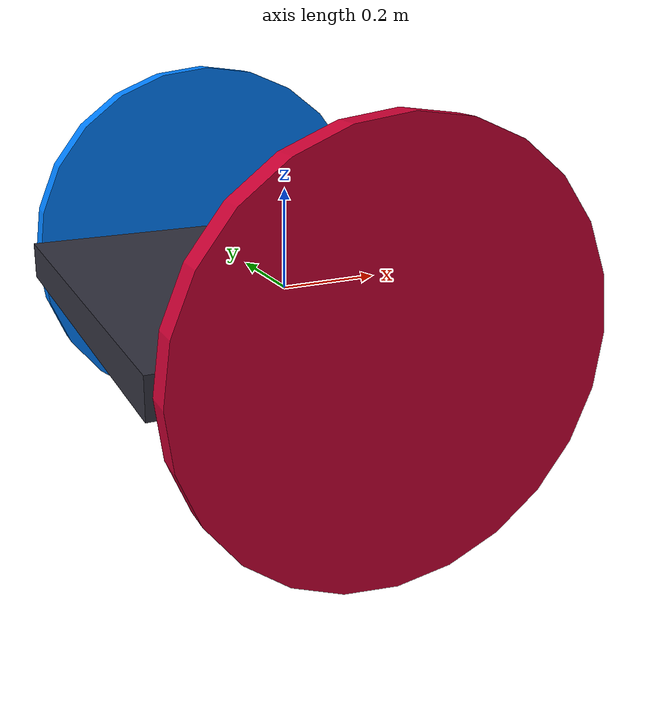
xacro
<?xml version="1.0" ?>

<robot name="basic_robot"  xmlns:xacro="http://www.ros.org/wiki/xacro">
    <!-- Import diff macro -->
    <xacro:include filename="$(find en613_description)/urdf/basic_robot_macro.urdf.xacro"/>

    <xacro:arg name="use_gazebo" default="true"/>

    <xacro:if value="$(arg use_gazebo)">
        <xacro:include filename="$(find en613_description)/urdf/basic_robot.gazebo.xacro"/>
        <xacro:basic_robot_gazebo />
    </xacro:if>

    <xacro:unless value="$(arg use_gazebo)">
        <link name="odom" />

        <joint name="odom_to_chassis" type="fixed">
            <origin xyz="0 0 0.4" rpy="0 0 0"/>
            <parent link="odom"/>
            <child link="chassis"/>
        </joint>
    </xacro:unless>

    <xacro:basic_robot />

</robot>

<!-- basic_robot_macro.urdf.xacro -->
<robot xmlns:xacro="http://wiki.ros.org/xacro">
    <xacro:macro name="basic_robot" params="">
        <material name="electric-blue">
            <color rgba="0.0 0.5 1.0 1.0"/>
        </material>

        <material name="crimson-red">
            <color rgba="0.8 0.0 0.2 1.0"/>
        </material>

        <material name="lime-green">
            <color rgba="0.2 1.0 0.2 1.0"/>
        </material>

        <material name="gunmetal-gray">
            <color rgba="0.2 0.2 0.25 1.0"/>
        </material>

        <!-- Body Link -->
        <link name="chassis">
            <visual>
                <origin rpy="0.0 0.0 0.0" xyz="0.0 0.0 0.0"/>
                <geometry>
                    <box size="0.825 0.825 0.075"/>
                </geometry>
                <material name="gunmetal-gray"/>
            </visual>

            <inertial>
                <origin xyz="0 0 -0.25" rpy="0 0 0"/>
                <mass value="15.0"/>
                <inertia ixx="0.8578125" ixy="0.0" ixz="0.0" iyy="0.8578125" iyz="0.0" izz="1.7015625" />
            </inertial>

            <collision>
                <geometry>
                    <box size="0.825 0.825 0.075"/>
                </geometry>

                <surface>
                    <friction>
                        <ode>
                            <mu>0.8</mu>
                            <mu2>0.8</mu2>
                        </ode>
                    </friction>
                </surface>
            </collision>
        </link>

        <link name="left_wheel">
            <visual>
                <origin rpy="1.570795 0.0 0.0" xyz="0.0 0.0 0.0"/>
                <geometry>
                    <cylinder length="0.05" radius="0.4"/>
                </geometry>
                <material name="electric-blue"/>
            </visual>

            <inertial>
                <origin xyz="0 0 0" rpy="0 0 0"/>
                <mass value="2.0"/>
                <inertia ixx="0.0804167" ixy="0.0" ixz="0.0" iyy="0.0804167" iyz="0.0" izz="0.16" />
            </inertial>

            <collision>
                <origin xyz="0.0 0.0 0.0" rpy="1.570795 0.0 0.0"/>
                <geometry>
                    <cylinder length="0.05" radius="0.4"/>
                </geometry>
                <surface>
                    <friction>
                        <ode>
                            <mu>1.2</mu>
                            <mu2>1.2</mu2>
                        </ode>
                    </friction>
                </surface>
            </collision>
        </link>

        <link name="right_wheel">
            <visual>
                <origin rpy="1.570795 0.0 0.0" xyz="0.0 0.0 0.0"/>
                <geometry>
                    <cylinder length="0.05" radius="0.4"/>
                </geometry>
                <material name="crimson-red"/>
            </visual>

            <inertial>
                <origin xyz="0 0 0" rpy="0 0 0"/>
                <mass value="2.0"/>
                <inertia ixx="0.0804167" ixy="0.0" ixz="0.0" iyy="0.0804167" iyz="0.0" izz="0.16" />
            </inertial>

            <collision>
                <origin xyz="0.0 0.0 0.0" rpy="1.570795 0.0 0.0"/>
                <geometry>
                    <cylinder length="0.05" radius="0.4"/>
                </geometry>
                <surface>
                    <friction>
                        <ode>
                            <mu>1.2</mu>
                            <mu2>1.2</mu2>
                        </ode>
                    </friction>
                </surface>
            </collision>
        </link>

        <link name="lidar_dome">
            <visual>
                <origin rpy="0.0 0.0 0.0" xyz="0.0 0.0 0.0"/>
                <geometry>
                    <sphere radius="0.03125"/>
                </geometry>
                <material name="lime-green"/>
            </visual>

            <inertial>
                <origin xyz="0 0 0" rpy="0 0 0"/>
                <mass value="0.002"/>
                <inertia
                    ixx="7.8125e-07"
                    ixy="0.0"
                    ixz="0.0"
                    iyy="7.8125e-07"
                    iyz="0.0"
                    izz="7.8125e-07"/>
            </inertial>

            <collision>
                <geometry>
                    <sphere radius="0.03125"/>
                </geometry>
            </collision>
        </link>

        <joint name="left_wheel_joint" type="continuous">
            <origin rpy="0 0 0" xyz="0 0.4375 0"/>
            <parent link="chassis"/>
            <child link="left_wheel"/>
            <axis xyz="0 1 0"/>
            <limit effort="100" velocity="5.0"/>
            <dynamics damping="0.5" friction="0.2"/>
        </joint>

        <joint name="right_wheel_joint" type="continuous">
            <origin rpy="0 0 0" xyz="0 -0.4375 0"/>
            <parent link="chassis"/>
            <child link="right_wheel"/>
            <axis xyz="0 1 0"/>
            <limit effort="100" velocity="5.0"/>
            <dynamics damping="0.5" friction="0.2"/>
        </joint>

        <joint name="lidar_joint" type="fixed">
            <origin rpy="0 0 0" xyz="0.3 0 0.025"/>
            <parent link="chassis"/>
            <child link="lidar_dome"/>
        </joint>
    </xacro:macro>
</robot>
